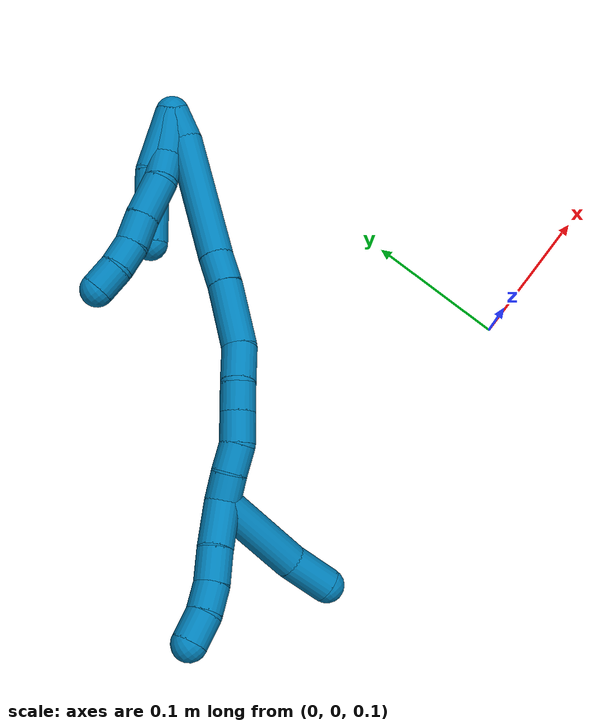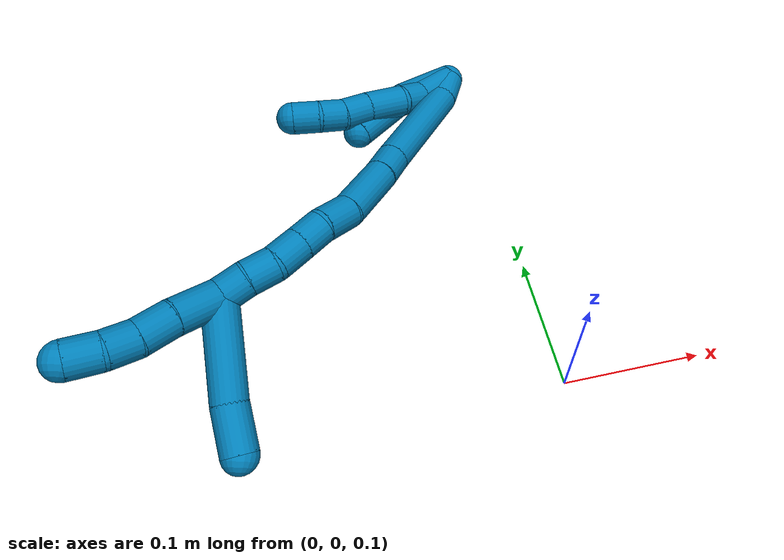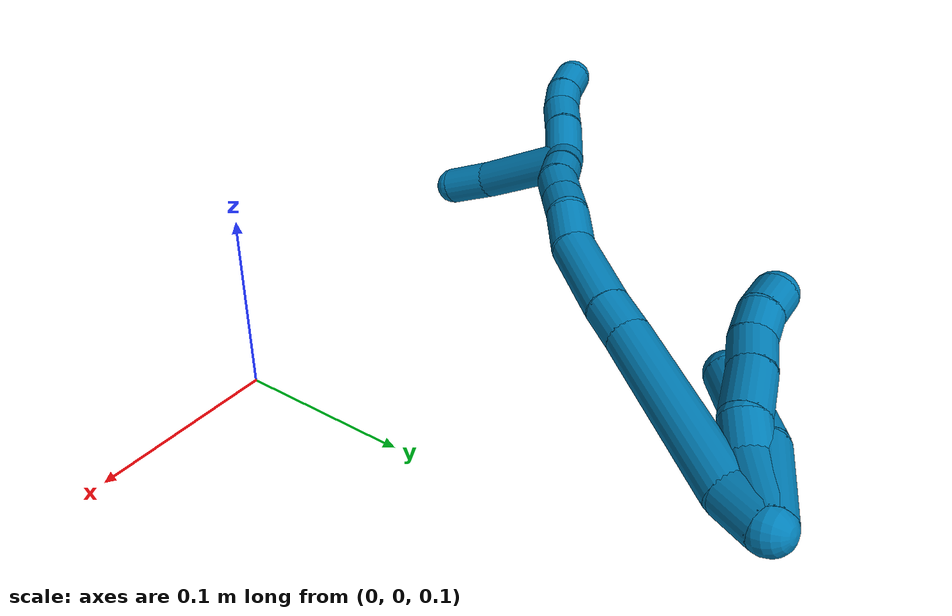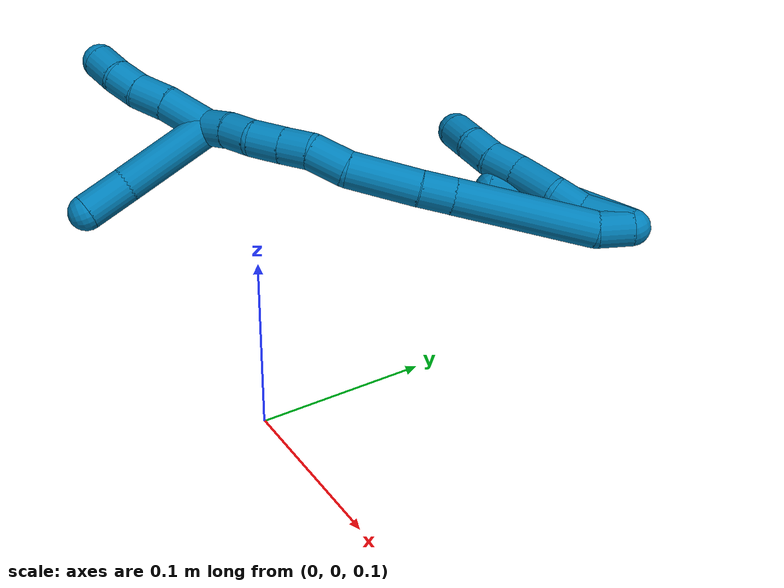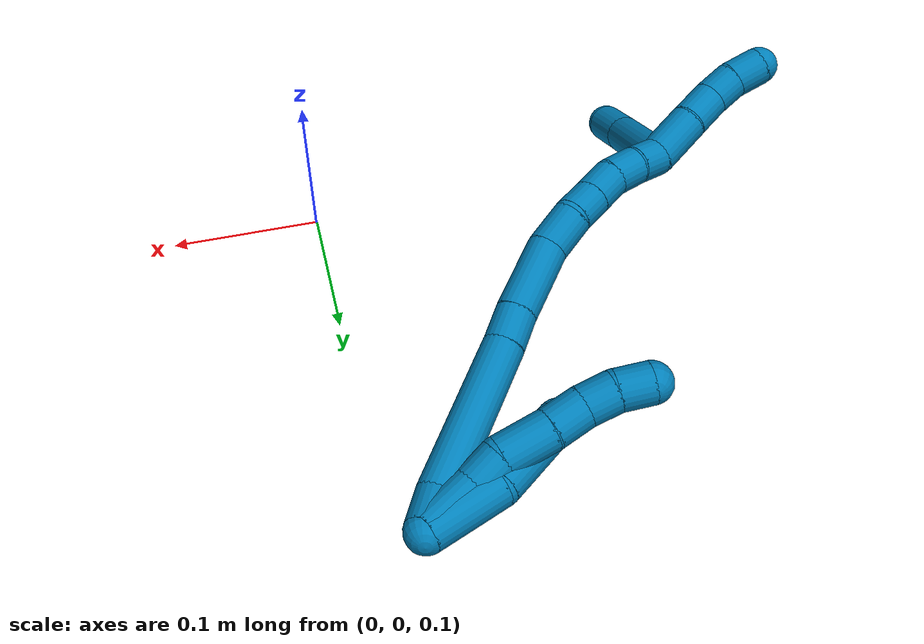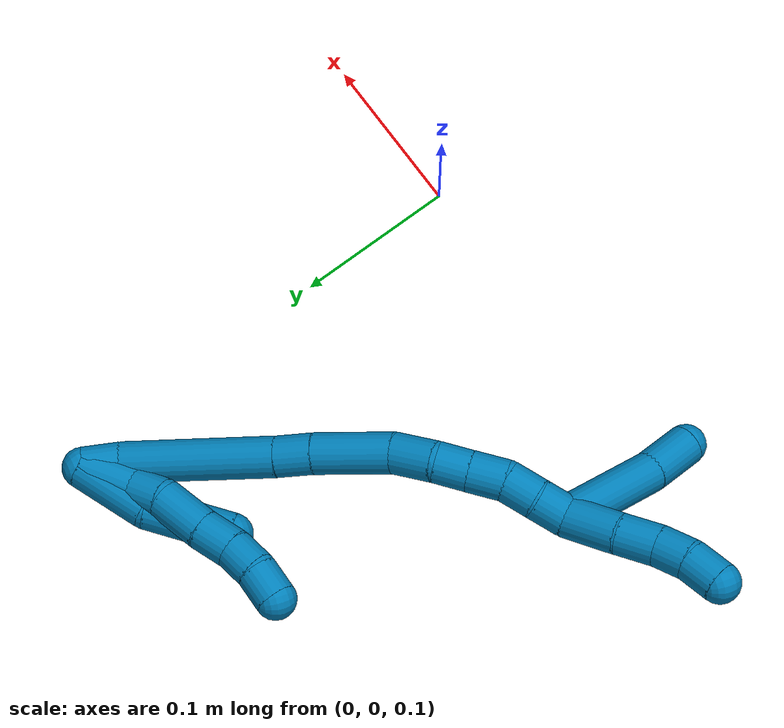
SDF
<sdf version="1.7">
 <world name="default">
  <model name="9">
   <static>0</static>
   <link name="9">
    <collision name="collision-cylinder-e_1_2_8">
     <pose>-0.012722 -0.002863 -0.011282 2.89305 -0.829802 -2.58892</pose>
     <geometry><cylinder><radius>0.0125</radius><length>0.034487</length></cylinder></geometry>
     <surface>
      <friction><ode><mu>1.16</mu><mu2>1.16</mu2><slip1>0</slip1><slip2>0</slip2></ode></friction>
      <contact><ode><kp>1e+06</kp><kd>1</kd><max_vel>0</max_vel><min_depth>0.001</min_depth></ode></contact>
     </surface>
    </collision>
    <visual name="visual-cylinder-e_1_2_8">
     <pose>-0.012722 -0.002863 -0.011282 2.89305 -0.829802 -2.58892</pose>
     <geometry><cylinder><radius>0.0125</radius><length>0.034487</length></cylinder></geometry>
     <material><ambient>0 0.490196 0.709804 1</ambient></material>
    </visual>
    <collision name="collision-cylinder-e_2_8_9">
     <pose>-0.033607 -0.009912 -0.027898 2.47624 -0.877665 -1.87243</pose>
     <geometry><cylinder><radius>0.0125</radius><length>0.021222</length></cylinder></geometry>
     <surface>
      <friction><ode><mu>1.16</mu><mu2>1.16</mu2><slip1>0</slip1><slip2>0</slip2></ode></friction>
      <contact><ode><kp>1e+06</kp><kd>1</kd><max_vel>0</max_vel><min_depth>0.001</min_depth></ode></contact>
     </surface>
    </collision>
    <visual name="visual-cylinder-e_2_8_9">
     <pose>-0.033607 -0.009912 -0.027898 2.47624 -0.877665 -1.87243</pose>
     <geometry><cylinder><radius>0.0125</radius><length>0.021222</length></cylinder></geometry>
     <material><ambient>0 0.490196 0.709804 1</ambient></material>
    </visual>
    <collision name="collision-cylinder-e_3_9_10">
     <pose>-0.055937 -0.016294 -0.039449 2.80199 -1.13515 -2.61618</pose>
     <geometry><cylinder><radius>0.0125</radius><length>0.031254</length></cylinder></geometry>
     <surface>
      <friction><ode><mu>1.16</mu><mu2>1.16</mu2><slip1>0</slip1><slip2>0</slip2></ode></friction>
      <contact><ode><kp>1e+06</kp><kd>1</kd><max_vel>0</max_vel><min_depth>0.001</min_depth></ode></contact>
     </surface>
    </collision>
    <visual name="visual-cylinder-e_3_9_10">
     <pose>-0.055937 -0.016294 -0.039449 2.80199 -1.13515 -2.61618</pose>
     <geometry><cylinder><radius>0.0125</radius><length>0.031254</length></cylinder></geometry>
     <material><ambient>0 0.490196 0.709804 1</ambient></material>
    </visual>
    <collision name="collision-cylinder-e_4_10_11">
     <pose>-0.079722 -0.020381 -0.050972 2.79926 -1.04114 -2.55593</pose>
     <geometry><cylinder><radius>0.0125</radius><length>0.022291</length></cylinder></geometry>
     <surface>
      <friction><ode><mu>1.16</mu><mu2>1.16</mu2><slip1>0</slip1><slip2>0</slip2></ode></friction>
      <contact><ode><kp>1e+06</kp><kd>1</kd><max_vel>0</max_vel><min_depth>0.001</min_depth></ode></contact>
     </surface>
    </collision>
    <visual name="visual-cylinder-e_4_10_11">
     <pose>-0.079722 -0.020381 -0.050972 2.79926 -1.04114 -2.55593</pose>
     <geometry><cylinder><radius>0.0125</radius><length>0.022291</length></cylinder></geometry>
     <material><ambient>0 0.490196 0.709804 1</ambient></material>
    </visual>
    <collision name="collision-cylinder-e_5_11_12">
     <pose>-0.098815 -0.023963 -0.059138 2.60777 -1.23331 -2.40529</pose>
     <geometry><cylinder><radius>0.0125</radius><length>0.020081</length></cylinder></geometry>
     <surface>
      <friction><ode><mu>1.16</mu><mu2>1.16</mu2><slip1>0</slip1><slip2>0</slip2></ode></friction>
      <contact><ode><kp>1e+06</kp><kd>1</kd><max_vel>0</max_vel><min_depth>0.001</min_depth></ode></contact>
     </surface>
    </collision>
    <visual name="visual-cylinder-e_5_11_12">
     <pose>-0.098815 -0.023963 -0.059138 2.60777 -1.23331 -2.40529</pose>
     <geometry><cylinder><radius>0.0125</radius><length>0.020081</length></cylinder></geometry>
     <material><ambient>0 0.490196 0.709804 1</ambient></material>
    </visual>
    <collision name="collision-cylinder-e_6_12_6">
     <pose>-0.118452 -0.025327 -0.063837 -2.96511 -1.38919 2.92999</pose>
     <geometry><cylinder><radius>0.0125</radius><length>0.020665</length></cylinder></geometry>
     <surface>
      <friction><ode><mu>1.16</mu><mu2>1.16</mu2><slip1>0</slip1><slip2>0</slip2></ode></friction>
      <contact><ode><kp>1e+06</kp><kd>1</kd><max_vel>0</max_vel><min_depth>0.001</min_depth></ode></contact>
     </surface>
    </collision>
    <visual name="visual-cylinder-e_6_12_6">
     <pose>-0.118452 -0.025327 -0.063837 -2.96511 -1.38919 2.92999</pose>
     <geometry><cylinder><radius>0.0125</radius><length>0.020665</length></cylinder></geometry>
     <material><ambient>0 0.490196 0.709804 1</ambient></material>
    </visual>
    <collision name="collision-cylinder-e_1_2_13">
     <pose>-0.019727 -0.001435 -0.012334 3.02575 -1.00901 -2.93233</pose>
     <geometry><cylinder><radius>0.0125</radius><length>0.046619</length></cylinder></geometry>
     <surface>
      <friction><ode><mu>1.16</mu><mu2>1.16</mu2><slip1>0</slip1><slip2>0</slip2></ode></friction>
      <contact><ode><kp>1e+06</kp><kd>1</kd><max_vel>0</max_vel><min_depth>0.001</min_depth></ode></contact>
     </surface>
    </collision>
    <visual name="visual-cylinder-e_1_2_13">
     <pose>-0.019727 -0.001435 -0.012334 3.02575 -1.00901 -2.93233</pose>
     <geometry><cylinder><radius>0.0125</radius><length>0.046619</length></cylinder></geometry>
     <material><ambient>0 0.490196 0.709804 1</ambient></material>
    </visual>
    <collision name="collision-cylinder-e_2_13_5">
     <pose>-0.057103 -0.006267 -0.044399 2.9711 -0.722501 -2.69674</pose>
     <geometry><cylinder><radius>0.0125</radius><length>0.053381</length></cylinder></geometry>
     <surface>
      <friction><ode><mu>1.16</mu><mu2>1.16</mu2><slip1>0</slip1><slip2>0</slip2></ode></friction>
      <contact><ode><kp>1e+06</kp><kd>1</kd><max_vel>0</max_vel><min_depth>0.001</min_depth></ode></contact>
     </surface>
    </collision>
    <visual name="visual-cylinder-e_2_13_5">
     <pose>-0.057103 -0.006267 -0.044399 2.9711 -0.722501 -2.69674</pose>
     <geometry><cylinder><radius>0.0125</radius><length>0.053381</length></cylinder></geometry>
     <material><ambient>0 0.490196 0.709804 1</ambient></material>
    </visual>
    <collision name="collision-cylinder-e_1_2_14">
     <pose>-0.00319 -0.002212 -0.010914 2.94166 -0.27898 -1.90096</pose>
     <geometry><cylinder><radius>0.0125</radius><length>0.023168</length></cylinder></geometry>
     <surface>
      <friction><ode><mu>1.16</mu><mu2>1.16</mu2><slip1>0</slip1><slip2>0</slip2></ode></friction>
      <contact><ode><kp>1e+06</kp><kd>1</kd><max_vel>0</max_vel><min_depth>0.001</min_depth></ode></contact>
     </surface>
    </collision>
    <visual name="visual-cylinder-e_1_2_14">
     <pose>-0.00319 -0.002212 -0.010914 2.94166 -0.27898 -1.90096</pose>
     <geometry><cylinder><radius>0.0125</radius><length>0.023168</length></cylinder></geometry>
     <material><ambient>0 0.490196 0.709804 1</ambient></material>
    </visual>
    <collision name="collision-cylinder-e_2_14_15">
     <pose>-0.028166 -0.022584 -0.060336 2.70092 -0.472977 -1.64398</pose>
     <geometry><cylinder><radius>0.0125</radius><length>0.095652</length></cylinder></geometry>
     <surface>
      <friction><ode><mu>1.16</mu><mu2>1.16</mu2><slip1>0</slip1><slip2>0</slip2></ode></friction>
      <contact><ode><kp>1e+06</kp><kd>1</kd><max_vel>0</max_vel><min_depth>0.001</min_depth></ode></contact>
     </surface>
    </collision>
    <visual name="visual-cylinder-e_2_14_15">
     <pose>-0.028166 -0.022584 -0.060336 2.70092 -0.472977 -1.64398</pose>
     <geometry><cylinder><radius>0.0125</radius><length>0.095652</length></cylinder></geometry>
     <material><ambient>0 0.490196 0.709804 1</ambient></material>
    </visual>
    <collision name="collision-cylinder-e_3_15_16">
     <pose>-0.054679 -0.045405 -0.108062 2.67348 -0.429123 -1.48097</pose>
     <geometry><cylinder><radius>0.0125</radius><length>0.022718</length></cylinder></geometry>
     <surface>
      <friction><ode><mu>1.16</mu><mu2>1.16</mu2><slip1>0</slip1><slip2>0</slip2></ode></friction>
      <contact><ode><kp>1e+06</kp><kd>1</kd><max_vel>0</max_vel><min_depth>0.001</min_depth></ode></contact>
     </surface>
    </collision>
    <visual name="visual-cylinder-e_3_15_16">
     <pose>-0.054679 -0.045405 -0.108062 2.67348 -0.429123 -1.48097</pose>
     <geometry><cylinder><radius>0.0125</radius><length>0.022718</length></cylinder></geometry>
     <material><ambient>0 0.490196 0.709804 1</ambient></material>
    </visual>
    <collision name="collision-cylinder-e_4_16_17">
     <pose>-0.07116 -0.059414 -0.136316 2.6851 -0.506131 -1.6779</pose>
     <geometry><cylinder><radius>0.0125</radius><length>0.048496</length></cylinder></geometry>
     <surface>
      <friction><ode><mu>1.16</mu><mu2>1.16</mu2><slip1>0</slip1><slip2>0</slip2></ode></friction>
      <contact><ode><kp>1e+06</kp><kd>1</kd><max_vel>0</max_vel><min_depth>0.001</min_depth></ode></contact>
     </surface>
    </collision>
    <visual name="visual-cylinder-e_4_16_17">
     <pose>-0.07116 -0.059414 -0.136316 2.6851 -0.506131 -1.6779</pose>
     <geometry><cylinder><radius>0.0125</radius><length>0.048496</length></cylinder></geometry>
     <material><ambient>0 0.490196 0.709804 1</ambient></material>
    </visual>
    <collision name="collision-cylinder-e_5_17_18">
     <pose>-0.091942 -0.074026 -0.163587 2.57288 -0.745674 -1.85811</pose>
     <geometry><cylinder><radius>0.0125</radius><length>0.026608</length></cylinder></geometry>
     <surface>
      <friction><ode><mu>1.16</mu><mu2>1.16</mu2><slip1>0</slip1><slip2>0</slip2></ode></friction>
      <contact><ode><kp>1e+06</kp><kd>1</kd><max_vel>0</max_vel><min_depth>0.001</min_depth></ode></contact>
     </surface>
    </collision>
    <visual name="visual-cylinder-e_5_17_18">
     <pose>-0.091942 -0.074026 -0.163587 2.57288 -0.745674 -1.85811</pose>
     <geometry><cylinder><radius>0.0125</radius><length>0.026608</length></cylinder></geometry>
     <material><ambient>0 0.490196 0.709804 1</ambient></material>
    </visual>
    <collision name="collision-cylinder-e_6_18_19">
     <pose>-0.107716 -0.080843 -0.179353 2.93821 -0.720287 -2.61233</pose>
     <geometry><cylinder><radius>0.0125</radius><length>0.02046</length></cylinder></geometry>
     <surface>
      <friction><ode><mu>1.16</mu><mu2>1.16</mu2><slip1>0</slip1><slip2>0</slip2></ode></friction>
      <contact><ode><kp>1e+06</kp><kd>1</kd><max_vel>0</max_vel><min_depth>0.001</min_depth></ode></contact>
     </surface>
    </collision>
    <visual name="visual-cylinder-e_6_18_19">
     <pose>-0.107716 -0.080843 -0.179353 2.93821 -0.720287 -2.61233</pose>
     <geometry><cylinder><radius>0.0125</radius><length>0.02046</length></cylinder></geometry>
     <material><ambient>0 0.490196 0.709804 1</ambient></material>
    </visual>
    <collision name="collision-cylinder-e_7_19_20">
     <pose>-0.121798 -0.084407 -0.19499 2.89838 -0.720613 -2.51425</pose>
     <geometry><cylinder><radius>0.0125</radius><length>0.022231</length></cylinder></geometry>
     <surface>
      <friction><ode><mu>1.16</mu><mu2>1.16</mu2><slip1>0</slip1><slip2>0</slip2></ode></friction>
      <contact><ode><kp>1e+06</kp><kd>1</kd><max_vel>0</max_vel><min_depth>0.001</min_depth></ode></contact>
     </surface>
    </collision>
    <visual name="visual-cylinder-e_7_19_20">
     <pose>-0.121798 -0.084407 -0.19499 2.89838 -0.720613 -2.51425</pose>
     <geometry><cylinder><radius>0.0125</radius><length>0.022231</length></cylinder></geometry>
     <material><ambient>0 0.490196 0.709804 1</ambient></material>
    </visual>
    <collision name="collision-cylinder-e_8_20_21">
     <pose>-0.137558 -0.086731 -0.208836 3.08712 -0.972094 -3.03856</pose>
     <geometry><cylinder><radius>0.0125</radius><length>0.020399</length></cylinder></geometry>
     <surface>
      <friction><ode><mu>1.16</mu><mu2>1.16</mu2><slip1>0</slip1><slip2>0</slip2></ode></friction>
      <contact><ode><kp>1e+06</kp><kd>1</kd><max_vel>0</max_vel><min_depth>0.001</min_depth></ode></contact>
     </surface>
    </collision>
    <visual name="visual-cylinder-e_8_20_21">
     <pose>-0.137558 -0.086731 -0.208836 3.08712 -0.972094 -3.03856</pose>
     <geometry><cylinder><radius>0.0125</radius><length>0.020399</length></cylinder></geometry>
     <material><ambient>0 0.490196 0.709804 1</ambient></material>
    </visual>
    <collision name="collision-cylinder-e_9_21_1">
     <pose>-0.153826 -0.086067 -0.22092 -2.98875 -0.884886 2.82113</pose>
     <geometry><cylinder><radius>0.0125</radius><length>0.020269</length></cylinder></geometry>
     <surface>
      <friction><ode><mu>1.16</mu><mu2>1.16</mu2><slip1>0</slip1><slip2>0</slip2></ode></friction>
      <contact><ode><kp>1e+06</kp><kd>1</kd><max_vel>0</max_vel><min_depth>0.001</min_depth></ode></contact>
     </surface>
    </collision>
    <visual name="visual-cylinder-e_9_21_1">
     <pose>-0.153826 -0.086067 -0.22092 -2.98875 -0.884886 2.82113</pose>
     <geometry><cylinder><radius>0.0125</radius><length>0.020269</length></cylinder></geometry>
     <material><ambient>0 0.490196 0.709804 1</ambient></material>
    </visual>
    <collision name="collision-cylinder-e_1_1_22">
     <pose>-0.174291 -0.091417 -0.236499 2.54098 -0.845233 -1.93552</pose>
     <geometry><cylinder><radius>0.0125</radius><length>0.033742</length></cylinder></geometry>
     <surface>
      <friction><ode><mu>1.16</mu><mu2>1.16</mu2><slip1>0</slip1><slip2>0</slip2></ode></friction>
      <contact><ode><kp>1e+06</kp><kd>1</kd><max_vel>0</max_vel><min_depth>0.001</min_depth></ode></contact>
     </surface>
    </collision>
    <visual name="visual-cylinder-e_1_1_22">
     <pose>-0.174291 -0.091417 -0.236499 2.54098 -0.845233 -1.93552</pose>
     <geometry><cylinder><radius>0.0125</radius><length>0.033742</length></cylinder></geometry>
     <material><ambient>0 0.490196 0.709804 1</ambient></material>
    </visual>
    <collision name="collision-cylinder-e_2_22_23">
     <pose>-0.195656 -0.101302 -0.25332 2.70289 -0.806754 -2.17883</pose>
     <geometry><cylinder><radius>0.0125</radius><length>0.02422</length></cylinder></geometry>
     <surface>
      <friction><ode><mu>1.16</mu><mu2>1.16</mu2><slip1>0</slip1><slip2>0</slip2></ode></friction>
      <contact><ode><kp>1e+06</kp><kd>1</kd><max_vel>0</max_vel><min_depth>0.001</min_depth></ode></contact>
     </surface>
    </collision>
    <visual name="visual-cylinder-e_2_22_23">
     <pose>-0.195656 -0.101302 -0.25332 2.70289 -0.806754 -2.17883</pose>
     <geometry><cylinder><radius>0.0125</radius><length>0.02422</length></cylinder></geometry>
     <material><ambient>0 0.490196 0.709804 1</ambient></material>
    </visual>
    <collision name="collision-cylinder-e_3_23_24">
     <pose>-0.212675 -0.108284 -0.265733 2.52497 -0.949893 -2.03255</pose>
     <geometry><cylinder><radius>0.0125</radius><length>0.020348</length></cylinder></geometry>
     <surface>
      <friction><ode><mu>1.16</mu><mu2>1.16</mu2><slip1>0</slip1><slip2>0</slip2></ode></friction>
      <contact><ode><kp>1e+06</kp><kd>1</kd><max_vel>0</max_vel><min_depth>0.001</min_depth></ode></contact>
     </surface>
    </collision>
    <visual name="visual-cylinder-e_3_23_24">
     <pose>-0.212675 -0.108284 -0.265733 2.52497 -0.949893 -2.03255</pose>
     <geometry><cylinder><radius>0.0125</radius><length>0.020348</length></cylinder></geometry>
     <material><ambient>0 0.490196 0.709804 1</ambient></material>
    </visual>
    <collision name="collision-cylinder-e_4_24_4">
     <pose>-0.230916 -0.113848 -0.274264 2.61706 -1.16546 -2.368</pose>
     <geometry><cylinder><radius>0.0125</radius><length>0.021691</length></cylinder></geometry>
     <surface>
      <friction><ode><mu>1.16</mu><mu2>1.16</mu2><slip1>0</slip1><slip2>0</slip2></ode></friction>
      <contact><ode><kp>1e+06</kp><kd>1</kd><max_vel>0</max_vel><min_depth>0.001</min_depth></ode></contact>
     </surface>
    </collision>
    <visual name="visual-cylinder-e_4_24_4">
     <pose>-0.230916 -0.113848 -0.274264 2.61706 -1.16546 -2.368</pose>
     <geometry><cylinder><radius>0.0125</radius><length>0.021691</length></cylinder></geometry>
     <material><ambient>0 0.490196 0.709804 1</ambient></material>
    </visual>
    <collision name="collision-cylinder-e_1_1_25">
     <pose>-0.155199 -0.080542 -0.260163 -3.00424 0.192384 -1.90299</pose>
     <geometry><cylinder><radius>0.0125</radius><length>0.067673</length></cylinder></geometry>
     <surface>
      <friction><ode><mu>1.16</mu><mu2>1.16</mu2><slip1>0</slip1><slip2>0</slip2></ode></friction>
      <contact><ode><kp>1e+06</kp><kd>1</kd><max_vel>0</max_vel><min_depth>0.001</min_depth></ode></contact>
     </surface>
    </collision>
    <visual name="visual-cylinder-e_1_1_25">
     <pose>-0.155199 -0.080542 -0.260163 -3.00424 0.192384 -1.90299</pose>
     <geometry><cylinder><radius>0.0125</radius><length>0.067673</length></cylinder></geometry>
     <material><ambient>0 0.490196 0.709804 1</ambient></material>
    </visual>
    <collision name="collision-cylinder-e_2_25_3">
     <pose>-0.143947 -0.075255 -0.308485 -3.09367 0.300382 -2.82746</pose>
     <geometry><cylinder><radius>0.0125</radius><length>0.032327</length></cylinder></geometry>
     <surface>
      <friction><ode><mu>1.16</mu><mu2>1.16</mu2><slip1>0</slip1><slip2>0</slip2></ode></friction>
      <contact><ode><kp>1e+06</kp><kd>1</kd><max_vel>0</max_vel><min_depth>0.001</min_depth></ode></contact>
     </surface>
    </collision>
    <visual name="visual-cylinder-e_2_25_3">
     <pose>-0.143947 -0.075255 -0.308485 -3.09367 0.300382 -2.82746</pose>
     <geometry><cylinder><radius>0.0125</radius><length>0.032327</length></cylinder></geometry>
     <material><ambient>0 0.490196 0.709804 1</ambient></material>
    </visual>
    <collision name="collision-sphere-3">
     <pose>-0.139165 -0.074516 -0.323907 0 -0 0</pose>
     <geometry><sphere><radius>0.0125</radius></sphere></geometry>
     <surface>
      <friction><ode><mu>1.16</mu><mu2>1.16</mu2><slip1>0</slip1><slip2>0</slip2></ode></friction>
      <contact><ode><kp>1e+06</kp><kd>1</kd><max_vel>0</max_vel><min_depth>0.001</min_depth></ode></contact>
     </surface>
    </collision>
    <visual name="visual-sphere-3">
     <pose>-0.139165 -0.074516 -0.323907 0 -0 0</pose>
     <geometry><sphere><radius>0.0125</radius></sphere></geometry>
     <material><ambient>0 0.490196 0.709804 1</ambient></material>
    </visual>
    <collision name="collision-sphere-25">
     <pose>-0.14873 -0.075995 -0.293063 0 -0 0</pose>
     <geometry><sphere><radius>0.0125</radius></sphere></geometry>
     <surface>
      <friction><ode><mu>1.16</mu><mu2>1.16</mu2><slip1>0</slip1><slip2>0</slip2></ode></friction>
      <contact><ode><kp>1e+06</kp><kd>1</kd><max_vel>0</max_vel><min_depth>0.001</min_depth></ode></contact>
     </surface>
    </collision>
    <visual name="visual-sphere-25">
     <pose>-0.14873 -0.075995 -0.293063 0 -0 0</pose>
     <geometry><sphere><radius>0.0125</radius></sphere></geometry>
     <material><ambient>0 0.490196 0.709804 1</ambient></material>
    </visual>
    <collision name="collision-sphere-4">
     <pose>-0.240883 -0.11599 -0.277965 0 -0 0</pose>
     <geometry><sphere><radius>0.0125</radius></sphere></geometry>
     <surface>
      <friction><ode><mu>1.16</mu><mu2>1.16</mu2><slip1>0</slip1><slip2>0</slip2></ode></friction>
      <contact><ode><kp>1e+06</kp><kd>1</kd><max_vel>0</max_vel><min_depth>0.001</min_depth></ode></contact>
     </surface>
    </collision>
    <visual name="visual-sphere-4">
     <pose>-0.240883 -0.11599 -0.277965 0 -0 0</pose>
     <geometry><sphere><radius>0.0125</radius></sphere></geometry>
     <material><ambient>0 0.490196 0.709804 1</ambient></material>
    </visual>
    <collision name="collision-sphere-24">
     <pose>-0.22095 -0.111706 -0.270562 0 -0 0</pose>
     <geometry><sphere><radius>0.0125</radius></sphere></geometry>
     <surface>
      <friction><ode><mu>1.16</mu><mu2>1.16</mu2><slip1>0</slip1><slip2>0</slip2></ode></friction>
      <contact><ode><kp>1e+06</kp><kd>1</kd><max_vel>0</max_vel><min_depth>0.001</min_depth></ode></contact>
     </surface>
    </collision>
    <visual name="visual-sphere-24">
     <pose>-0.22095 -0.111706 -0.270562 0 -0 0</pose>
     <geometry><sphere><radius>0.0125</radius></sphere></geometry>
     <material><ambient>0 0.490196 0.709804 1</ambient></material>
    </visual>
    <collision name="collision-sphere-23">
     <pose>-0.2044 -0.104861 -0.260905 0 -0 0</pose>
     <geometry><sphere><radius>0.0125</radius></sphere></geometry>
     <surface>
      <friction><ode><mu>1.16</mu><mu2>1.16</mu2><slip1>0</slip1><slip2>0</slip2></ode></friction>
      <contact><ode><kp>1e+06</kp><kd>1</kd><max_vel>0</max_vel><min_depth>0.001</min_depth></ode></contact>
     </surface>
    </collision>
    <visual name="visual-sphere-23">
     <pose>-0.2044 -0.104861 -0.260905 0 -0 0</pose>
     <geometry><sphere><radius>0.0125</radius></sphere></geometry>
     <material><ambient>0 0.490196 0.709804 1</ambient></material>
    </visual>
    <collision name="collision-sphere-22">
     <pose>-0.186912 -0.097743 -0.245735 0 -0 0</pose>
     <geometry><sphere><radius>0.0125</radius></sphere></geometry>
     <surface>
      <friction><ode><mu>1.16</mu><mu2>1.16</mu2><slip1>0</slip1><slip2>0</slip2></ode></friction>
      <contact><ode><kp>1e+06</kp><kd>1</kd><max_vel>0</max_vel><min_depth>0.001</min_depth></ode></contact>
     </surface>
    </collision>
    <visual name="visual-sphere-22">
     <pose>-0.186912 -0.097743 -0.245735 0 -0 0</pose>
     <geometry><sphere><radius>0.0125</radius></sphere></geometry>
     <material><ambient>0 0.490196 0.709804 1</ambient></material>
    </visual>
    <collision name="collision-sphere-1">
     <pose>-0.161669 -0.08509 -0.227264 0 -0 0</pose>
     <geometry><sphere><radius>0.0125</radius></sphere></geometry>
     <surface>
      <friction><ode><mu>1.16</mu><mu2>1.16</mu2><slip1>0</slip1><slip2>0</slip2></ode></friction>
      <contact><ode><kp>1e+06</kp><kd>1</kd><max_vel>0</max_vel><min_depth>0.001</min_depth></ode></contact>
     </surface>
    </collision>
    <visual name="visual-sphere-1">
     <pose>-0.161669 -0.08509 -0.227264 0 -0 0</pose>
     <geometry><sphere><radius>0.0125</radius></sphere></geometry>
     <material><ambient>0 0.490196 0.709804 1</ambient></material>
    </visual>
    <collision name="collision-sphere-21">
     <pose>-0.145984 -0.087044 -0.214575 0 -0 0</pose>
     <geometry><sphere><radius>0.0125</radius></sphere></geometry>
     <surface>
      <friction><ode><mu>1.16</mu><mu2>1.16</mu2><slip1>0</slip1><slip2>0</slip2></ode></friction>
      <contact><ode><kp>1e+06</kp><kd>1</kd><max_vel>0</max_vel><min_depth>0.001</min_depth></ode></contact>
     </surface>
    </collision>
    <visual name="visual-sphere-21">
     <pose>-0.145984 -0.087044 -0.214575 0 -0 0</pose>
     <geometry><sphere><radius>0.0125</radius></sphere></geometry>
     <material><ambient>0 0.490196 0.709804 1</ambient></material>
    </visual>
    <collision name="collision-sphere-12">
     <pose>-0.108289 -0.025655 -0.062 0 -0 0</pose>
     <geometry><sphere><radius>0.0125</radius></sphere></geometry>
     <surface>
      <friction><ode><mu>1.16</mu><mu2>1.16</mu2><slip1>0</slip1><slip2>0</slip2></ode></friction>
      <contact><ode><kp>1e+06</kp><kd>1</kd><max_vel>0</max_vel><min_depth>0.001</min_depth></ode></contact>
     </surface>
    </collision>
    <visual name="visual-sphere-12">
     <pose>-0.108289 -0.025655 -0.062 0 -0 0</pose>
     <geometry><sphere><radius>0.0125</radius></sphere></geometry>
     <material><ambient>0 0.490196 0.709804 1</ambient></material>
    </visual>
    <collision name="collision-sphere-11">
     <pose>-0.089341 -0.022271 -0.056276 0 -0 0</pose>
     <geometry><sphere><radius>0.0125</radius></sphere></geometry>
     <surface>
      <friction><ode><mu>1.16</mu><mu2>1.16</mu2><slip1>0</slip1><slip2>0</slip2></ode></friction>
      <contact><ode><kp>1e+06</kp><kd>1</kd><max_vel>0</max_vel><min_depth>0.001</min_depth></ode></contact>
     </surface>
    </collision>
    <visual name="visual-sphere-11">
     <pose>-0.089341 -0.022271 -0.056276 0 -0 0</pose>
     <geometry><sphere><radius>0.0125</radius></sphere></geometry>
     <material><ambient>0 0.490196 0.709804 1</ambient></material>
    </visual>
    <collision name="collision-sphere-10">
     <pose>-0.070104 -0.018491 -0.045667 0 -0 0</pose>
     <geometry><sphere><radius>0.0125</radius></sphere></geometry>
     <surface>
      <friction><ode><mu>1.16</mu><mu2>1.16</mu2><slip1>0</slip1><slip2>0</slip2></ode></friction>
      <contact><ode><kp>1e+06</kp><kd>1</kd><max_vel>0</max_vel><min_depth>0.001</min_depth></ode></contact>
     </surface>
    </collision>
    <visual name="visual-sphere-10">
     <pose>-0.070104 -0.018491 -0.045667 0 -0 0</pose>
     <geometry><sphere><radius>0.0125</radius></sphere></geometry>
     <material><ambient>0 0.490196 0.709804 1</ambient></material>
    </visual>
    <collision name="collision-sphere-9">
     <pose>-0.041769 -0.014097 -0.033232 0 -0 0</pose>
     <geometry><sphere><radius>0.0125</radius></sphere></geometry>
     <surface>
      <friction><ode><mu>1.16</mu><mu2>1.16</mu2><slip1>0</slip1><slip2>0</slip2></ode></friction>
      <contact><ode><kp>1e+06</kp><kd>1</kd><max_vel>0</max_vel><min_depth>0.001</min_depth></ode></contact>
     </surface>
    </collision>
    <visual name="visual-sphere-9">
     <pose>-0.041769 -0.014097 -0.033232 0 -0 0</pose>
     <geometry><sphere><radius>0.0125</radius></sphere></geometry>
     <material><ambient>0 0.490196 0.709804 1</ambient></material>
    </visual>
    <collision name="collision-sphere-2">
     <geometry><sphere><radius>0.0125</radius></sphere></geometry>
     <surface>
      <friction><ode><mu>1.16</mu><mu2>1.16</mu2><slip1>0</slip1><slip2>0</slip2></ode></friction>
      <contact><ode><kp>1e+06</kp><kd>1</kd><max_vel>0</max_vel><min_depth>0.001</min_depth></ode></contact>
     </surface>
    </collision>
    <visual name="visual-sphere-2">
     <geometry><sphere><radius>0.0125</radius></sphere></geometry>
     <material><ambient>0 0.490196 0.709804 1</ambient></material>
    </visual>
    <collision name="collision-sphere-19">
     <pose>-0.114464 -0.082396 -0.186883 0 -0 0</pose>
     <geometry><sphere><radius>0.0125</radius></sphere></geometry>
     <surface>
      <friction><ode><mu>1.16</mu><mu2>1.16</mu2><slip1>0</slip1><slip2>0</slip2></ode></friction>
      <contact><ode><kp>1e+06</kp><kd>1</kd><max_vel>0</max_vel><min_depth>0.001</min_depth></ode></contact>
     </surface>
    </collision>
    <visual name="visual-sphere-19">
     <pose>-0.114464 -0.082396 -0.186883 0 -0 0</pose>
     <geometry><sphere><radius>0.0125</radius></sphere></geometry>
     <material><ambient>0 0.490196 0.709804 1</ambient></material>
    </visual>
    <collision name="collision-sphere-8">
     <pose>-0.025445 -0.005727 -0.022564 0 -0 0</pose>
     <geometry><sphere><radius>0.0125</radius></sphere></geometry>
     <surface>
      <friction><ode><mu>1.16</mu><mu2>1.16</mu2><slip1>0</slip1><slip2>0</slip2></ode></friction>
      <contact><ode><kp>1e+06</kp><kd>1</kd><max_vel>0</max_vel><min_depth>0.001</min_depth></ode></contact>
     </surface>
    </collision>
    <visual name="visual-sphere-8">
     <pose>-0.025445 -0.005727 -0.022564 0 -0 0</pose>
     <geometry><sphere><radius>0.0125</radius></sphere></geometry>
     <material><ambient>0 0.490196 0.709804 1</ambient></material>
    </visual>
    <collision name="collision-sphere-6">
     <pose>-0.128614 -0.024999 -0.065674 0 -0 0</pose>
     <geometry><sphere><radius>0.0125</radius></sphere></geometry>
     <surface>
      <friction><ode><mu>1.16</mu><mu2>1.16</mu2><slip1>0</slip1><slip2>0</slip2></ode></friction>
      <contact><ode><kp>1e+06</kp><kd>1</kd><max_vel>0</max_vel><min_depth>0.001</min_depth></ode></contact>
     </surface>
    </collision>
    <visual name="visual-sphere-6">
     <pose>-0.128614 -0.024999 -0.065674 0 -0 0</pose>
     <geometry><sphere><radius>0.0125</radius></sphere></geometry>
     <material><ambient>0 0.490196 0.709804 1</ambient></material>
    </visual>
    <collision name="collision-sphere-13">
     <pose>-0.039454 -0.00287 -0.024667 0 -0 0</pose>
     <geometry><sphere><radius>0.0125</radius></sphere></geometry>
     <surface>
      <friction><ode><mu>1.16</mu><mu2>1.16</mu2><slip1>0</slip1><slip2>0</slip2></ode></friction>
      <contact><ode><kp>1e+06</kp><kd>1</kd><max_vel>0</max_vel><min_depth>0.001</min_depth></ode></contact>
     </surface>
    </collision>
    <visual name="visual-sphere-13">
     <pose>-0.039454 -0.00287 -0.024667 0 -0 0</pose>
     <geometry><sphere><radius>0.0125</radius></sphere></geometry>
     <material><ambient>0 0.490196 0.709804 1</ambient></material>
    </visual>
    <collision name="collision-sphere-5">
     <pose>-0.074753 -0.009665 -0.064131 0 -0 0</pose>
     <geometry><sphere><radius>0.0125</radius></sphere></geometry>
     <surface>
      <friction><ode><mu>1.16</mu><mu2>1.16</mu2><slip1>0</slip1><slip2>0</slip2></ode></friction>
      <contact><ode><kp>1e+06</kp><kd>1</kd><max_vel>0</max_vel><min_depth>0.001</min_depth></ode></contact>
     </surface>
    </collision>
    <visual name="visual-sphere-5">
     <pose>-0.074753 -0.009665 -0.064131 0 -0 0</pose>
     <geometry><sphere><radius>0.0125</radius></sphere></geometry>
     <material><ambient>0 0.490196 0.709804 1</ambient></material>
    </visual>
    <collision name="collision-sphere-14">
     <pose>-0.00638 -0.004423 -0.021829 0 -0 0</pose>
     <geometry><sphere><radius>0.0125</radius></sphere></geometry>
     <surface>
      <friction><ode><mu>1.16</mu><mu2>1.16</mu2><slip1>0</slip1><slip2>0</slip2></ode></friction>
      <contact><ode><kp>1e+06</kp><kd>1</kd><max_vel>0</max_vel><min_depth>0.001</min_depth></ode></contact>
     </surface>
    </collision>
    <visual name="visual-sphere-14">
     <pose>-0.00638 -0.004423 -0.021829 0 -0 0</pose>
     <geometry><sphere><radius>0.0125</radius></sphere></geometry>
     <material><ambient>0 0.490196 0.709804 1</ambient></material>
    </visual>
    <collision name="collision-sphere-15">
     <pose>-0.049953 -0.040745 -0.098844 0 -0 0</pose>
     <geometry><sphere><radius>0.0125</radius></sphere></geometry>
     <surface>
      <friction><ode><mu>1.16</mu><mu2>1.16</mu2><slip1>0</slip1><slip2>0</slip2></ode></friction>
      <contact><ode><kp>1e+06</kp><kd>1</kd><max_vel>0</max_vel><min_depth>0.001</min_depth></ode></contact>
     </surface>
    </collision>
    <visual name="visual-sphere-15">
     <pose>-0.049953 -0.040745 -0.098844 0 -0 0</pose>
     <geometry><sphere><radius>0.0125</radius></sphere></geometry>
     <material><ambient>0 0.490196 0.709804 1</ambient></material>
    </visual>
    <collision name="collision-sphere-16">
     <pose>-0.059405 -0.050065 -0.11728 0 -0 0</pose>
     <geometry><sphere><radius>0.0125</radius></sphere></geometry>
     <surface>
      <friction><ode><mu>1.16</mu><mu2>1.16</mu2><slip1>0</slip1><slip2>0</slip2></ode></friction>
      <contact><ode><kp>1e+06</kp><kd>1</kd><max_vel>0</max_vel><min_depth>0.001</min_depth></ode></contact>
     </surface>
    </collision>
    <visual name="visual-sphere-16">
     <pose>-0.059405 -0.050065 -0.11728 0 -0 0</pose>
     <geometry><sphere><radius>0.0125</radius></sphere></geometry>
     <material><ambient>0 0.490196 0.709804 1</ambient></material>
    </visual>
    <collision name="collision-sphere-17">
     <pose>-0.082916 -0.068763 -0.155352 0 -0 0</pose>
     <geometry><sphere><radius>0.0125</radius></sphere></geometry>
     <surface>
      <friction><ode><mu>1.16</mu><mu2>1.16</mu2><slip1>0</slip1><slip2>0</slip2></ode></friction>
      <contact><ode><kp>1e+06</kp><kd>1</kd><max_vel>0</max_vel><min_depth>0.001</min_depth></ode></contact>
     </surface>
    </collision>
    <visual name="visual-sphere-17">
     <pose>-0.082916 -0.068763 -0.155352 0 -0 0</pose>
     <geometry><sphere><radius>0.0125</radius></sphere></geometry>
     <material><ambient>0 0.490196 0.709804 1</ambient></material>
    </visual>
    <collision name="collision-sphere-18">
     <pose>-0.100968 -0.079289 -0.171822 0 -0 0</pose>
     <geometry><sphere><radius>0.0125</radius></sphere></geometry>
     <surface>
      <friction><ode><mu>1.16</mu><mu2>1.16</mu2><slip1>0</slip1><slip2>0</slip2></ode></friction>
      <contact><ode><kp>1e+06</kp><kd>1</kd><max_vel>0</max_vel><min_depth>0.001</min_depth></ode></contact>
     </surface>
    </collision>
    <visual name="visual-sphere-18">
     <pose>-0.100968 -0.079289 -0.171822 0 -0 0</pose>
     <geometry><sphere><radius>0.0125</radius></sphere></geometry>
     <material><ambient>0 0.490196 0.709804 1</ambient></material>
    </visual>
    <collision name="collision-sphere-20">
     <pose>-0.129133 -0.086418 -0.203096 0 -0 0</pose>
     <geometry><sphere><radius>0.0125</radius></sphere></geometry>
     <surface>
      <friction><ode><mu>1.16</mu><mu2>1.16</mu2><slip1>0</slip1><slip2>0</slip2></ode></friction>
      <contact><ode><kp>1e+06</kp><kd>1</kd><max_vel>0</max_vel><min_depth>0.001</min_depth></ode></contact>
     </surface>
    </collision>
    <visual name="visual-sphere-20">
     <pose>-0.129133 -0.086418 -0.203096 0 -0 0</pose>
     <geometry><sphere><radius>0.0125</radius></sphere></geometry>
     <material><ambient>0 0.490196 0.709804 1</ambient></material>
    </visual>
    <inertial>
     <pose>-0.09191 -0.047881 -0.130715 0 -0 0</pose>
     <mass>0.75</mass>
     <inertia>
      <ixx>-0.000208</ixx>
      <ixy>0</ixy>
      <ixz>0</ixz>
      <iyy>-4.7e-05</iyy>
      <iyz>0</iyz>
      <izz>8.1e-05</izz>
     </inertia>
    </inertial>
   </link>
   <pose>-0.017707 0.279833 0.134438 -1.27323 0.172274 -0.197604</pose>
  </model>
 </world>
</sdf>
